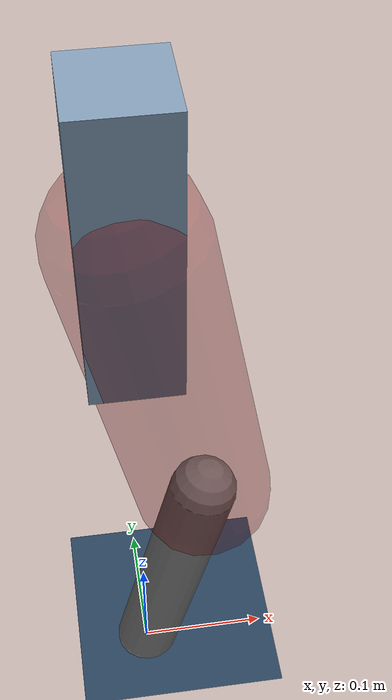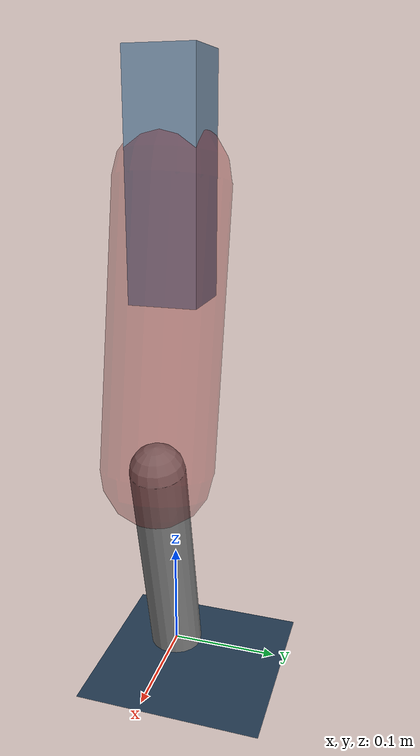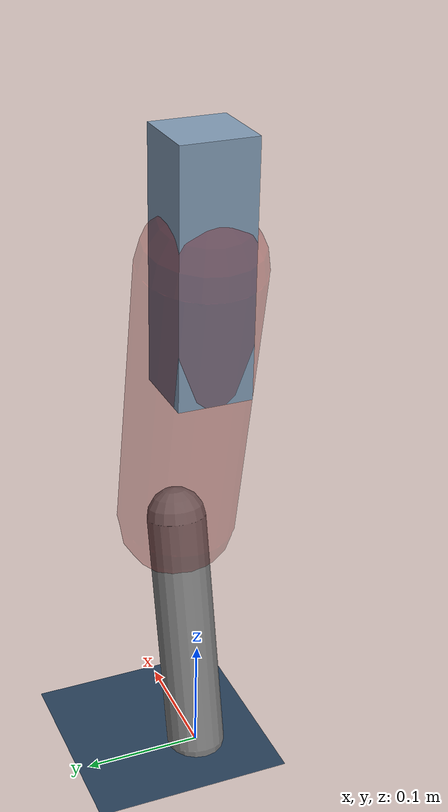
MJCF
<mujoco model="Hopper2D">
	<compiler inertiafromgeom="true" angle="radian" />
	<option timestep="0.001" integrator="implicit" cone="elliptic" solver="Newton" tolerance="1e-10" />

	<default>
		<geom contype="1" conaffinity="1" condim="3" friction="2 0.005 0.0001" solref="0.005 1" />
		<joint limited="true" damping="0.1" />
	</default>

	<asset>
		<texture name="skybox" type="skybox" builtin="gradient" rgb1=".4 .6 .8" rgb2="0 0 0" width="800" height="800" />
		<texture name="grid" type="2d" builtin="checker" rgb1=".1 .2 .3" rgb2=".2 .3 .4" width="300" height="300" mark="edge" markrgb=".2 .3 .4" />
		<material name="ground" texture="grid" texrepeat="1 1" texuniform="true" reflectance="0.1" />
		<material name="leg" rgba="0.5 0.6 0.7 1" />
	</asset>

	<worldbody>

		<geom name="floor" type="plane" size="5 5 0.25" material="ground" />

		<light directional="false" diffuse="0.8 0.8 0.8" specular="0.3 0.3 0.3" pos="0 0 2" dir="0 0 -1" />
		<light mode="targetbodycom" target="base" directional="false" diffuse="0.8 0.8 0.8" specular="0.3 0.3 0.3" pos="0 0 2" dir="0 0 -1" />

		<camera name="fixed" pos="0 -2 1" xyaxes="1 0 0 0 0 1" />
		<camera name="tracking" mode="trackcom" pos="0 -3 1" />

		<body name="root" pos="0 0 0.4476024647190816">
			<joint name="slide_x" type="slide" axis="1 0 0" range="-100 100" />
			<joint name="slide_z" type="slide" axis="0 0 1" range="0 10" />

			<body name="base" pos="0 0 0">
				<geom name="torso" type="box" size="0.03 0.03 0.1" mass="3.151" material="leg" />

				<body name="link1" pos="0 0 0" euler="0 1.3767571712149786 0">
					<joint type="hinge" axis="0 -1 0" pos="0 0 0" name="hinge1" limited="true" range="-3.14 3.14" stiffness="0" damping="0.1" />
					<geom name="thigh" type="capsule" fromto="0 0 0 0.24597989267168435 0 0" size="0.05" rgba="0.5 0 0 0.3" mass="0.8459497316792108" />

					<body name="link2" pos="0.24597989267168435 0 0" euler="0 0.42008848387089615 0">
						<joint type="hinge" axis="0 -1 0" pos="0 0 0" name="hinge2" limited="true" range="-3.14 3.14" stiffness="0" damping="0.1" />
						<geom name="shank" type="capsule" fromto="0 0 0 0.2116225720473973 0 0" size="0.025" mass="0.4106603148426576" />

					</body>
				</body>
			</body>
		</body>
	</worldbody>

	<actuator>
		<motor name="torque1" joint="hinge1" ctrlrange="-181.08900107247436 181.08900107247436" ctrllimited="true" gear="1" />
		<motor name="torque2" joint="hinge2" ctrlrange="-38.500619756688835 38.500619756688835" ctrllimited="true" gear="1" />
	</actuator>
</mujoco>
